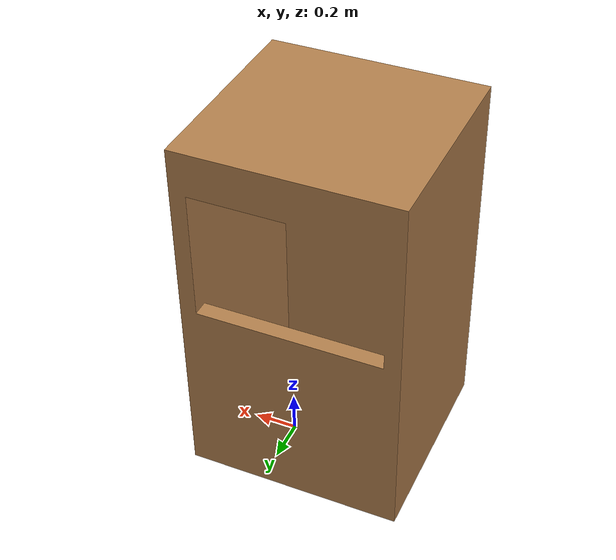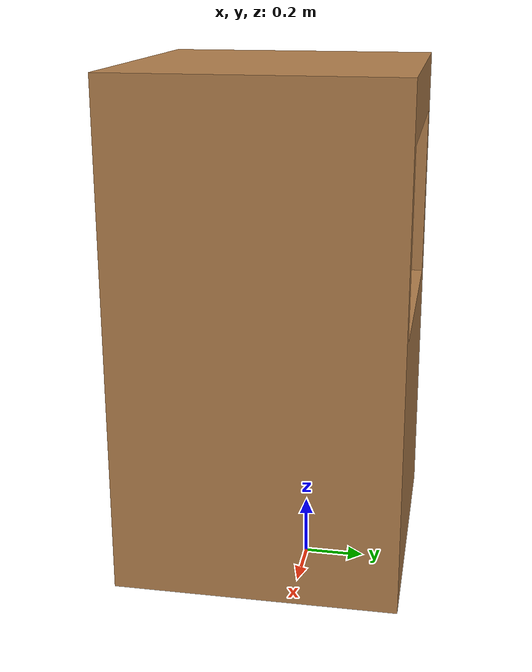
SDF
<?xml version="1.0" ?>
<sdf version="1.7">
  <model name="Box">
  <static>true</static>
  <pose>0 0 0 0 0 0</pose>
    <link name="Box">
      <pose>0 0 0 0 0 0</pose>
      <visual name="Box_visual">
        <geometry><mesh><uri>model://Box/meshes/Box.stl</uri></mesh></geometry>
        <material>
        <script>
          <uri>file://media/materials/scripts/gazebo.material</uri>
          <name>Gazebo/Wood</name>
        </script>
        </material>
      </visual>
      <collision name="Box_collision">
        <geometry><mesh><uri>model://Box/meshes/Box.stl</uri></mesh></geometry>
      </collision>
    </link>

  </model>
</sdf>
